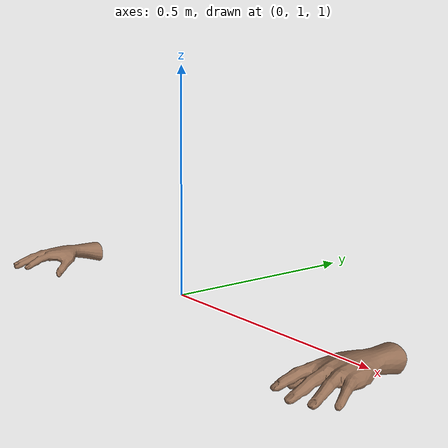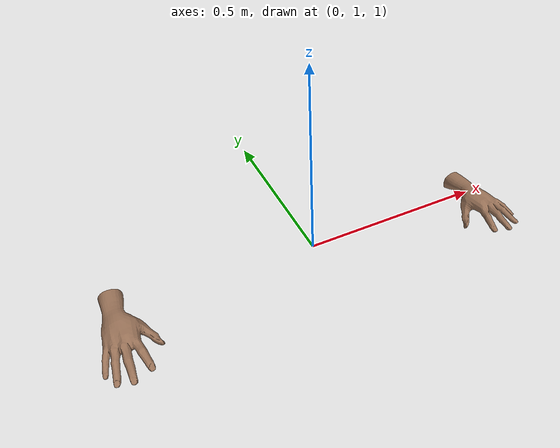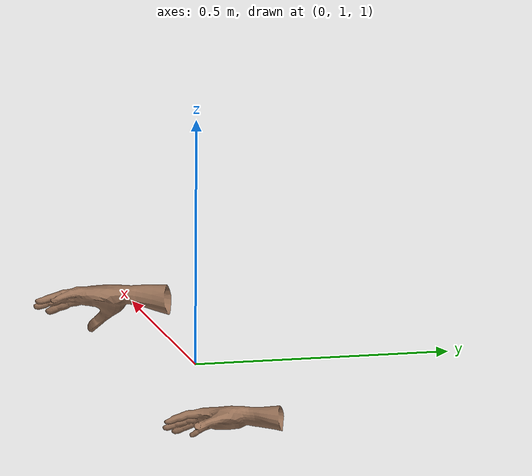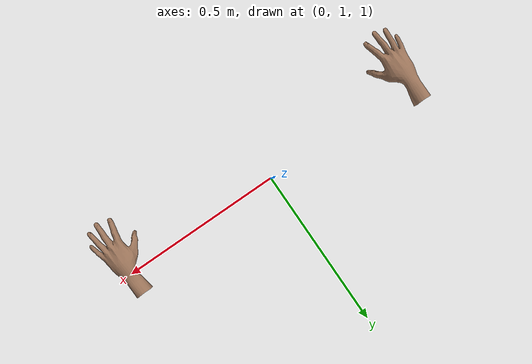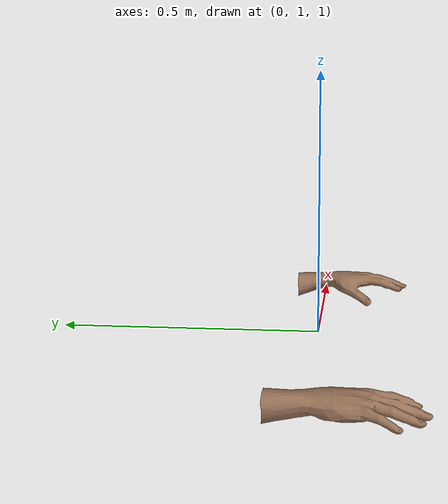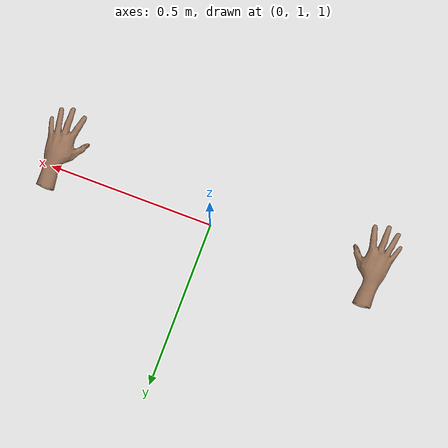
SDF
<?xml version="1.0" ?>
<sdf version="1.5">
	<model name="hands">
		<pose>0 0 1 0 0 0</pose>
		<self_collide>false</self_collide>
		<link name="right_hand">
			<gravity>0</gravity>
			<pose>-0.5 1 0 0.0 0.0 0.0</pose>
			<inertial>
				<mass>1.0</mass>
				<pose>0 0 0 0 0 0</pose>
				<inertia>
					<ixx>1.0</ixx>
					<ixy>0.0</ixy>
					<ixz>0.0</ixz>
					<iyy>1.0</iyy>
					<iyz>0.0</iyz>
					<izz>1.0</izz>
				</inertia>
			</inertial>
			<collision name="right_hand_collision">
				<pose>4.0898842298781e-05 6.227551004514857e-05 -4.773981416489651e-05 -9.920938515151079e-10 -0.0 0.0</pose>
				<geometry>
					<mesh>
						<uri>model://hands/meshes/collision/COL_right_hand.dae</uri> <scale>0.1 0.1 0.1</scale>
					</mesh>
				</geometry>
			</collision>
			<visual name="right_hand">
				<pose>4.0898842298781e-05 6.227551004514857e-05 -4.773981416489651e-05 -9.920952948050399e-10 -0.0 0.0</pose>
				<geometry>
					<mesh>
						<uri>model://hands/meshes/visual/VIS_right_hand.dae</uri> <scale>0.1 0.1 0.1</scale>
					</mesh>
				</geometry>
			</visual>
		</link>
		<link name="left_hand">
			<gravity>0</gravity>
			<pose>0.5 1 0 0.0 0.0 0.0</pose>
			<inertial>
				<mass>1.0</mass>
				<pose>0 0 0 0 0 0</pose>
				<inertia>
					<ixx>1.0</ixx>
					<ixy>0.0</ixy>
					<ixz>0.0</ixz>
					<iyy>1.0</iyy>
					<iyz>0.0</iyz>
					<izz>1.0</izz>
				</inertia>
			</inertial>
			<collision name="left_hand_collision">
				<pose>4.0898842298781e-05 6.227551004514857e-05 -4.773981416489651e-05 -9.920938515151079e-10 -0.0 0.0</pose>
				<geometry>
					<mesh>
						<uri>model://hands/meshes/collision/COL_left_hand.dae</uri> <scale>0.1 0.1 0.1</scale>
					</mesh>
				</geometry>
			</collision>
			<visual name="left_hand">
				<pose>4.0898842298781e-05 6.227551004514857e-05 -4.773981416489651e-05 -9.920952948050399e-10 -0.0 0.0</pose>
				<geometry>
					<mesh>
						<uri>model://hands/meshes/visual/VIS_left_hand.dae</uri> <scale>0.1 0.1 0.1</scale>
					</mesh>
				</geometry>
			</visual>
		</link>
	<plugin name="ForceLinkPlugin" filename="libForceLinkPlugin.so" />
	</model>
</sdf>
